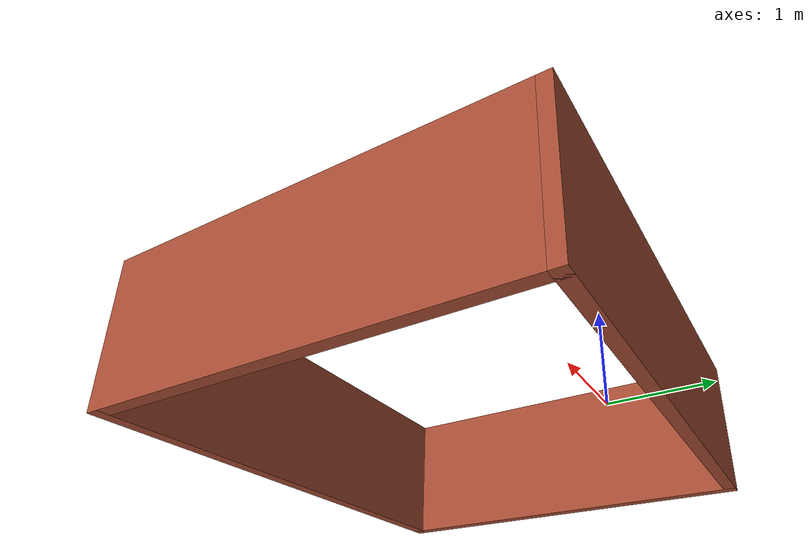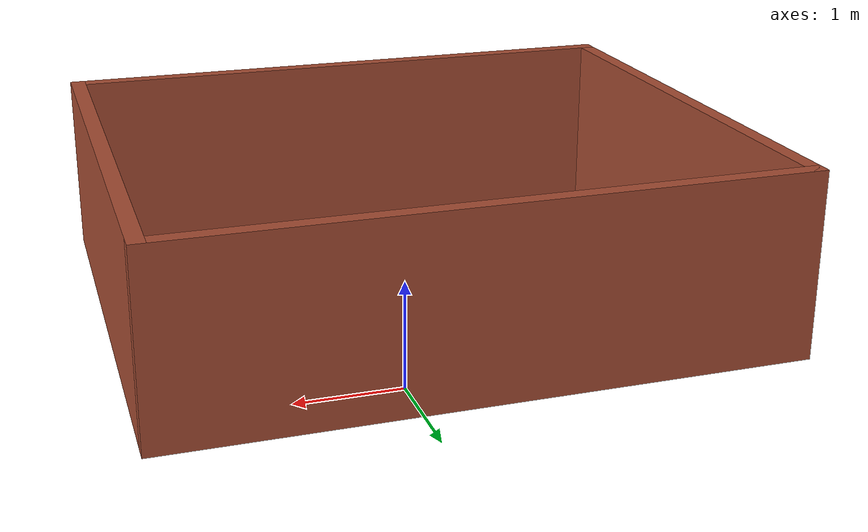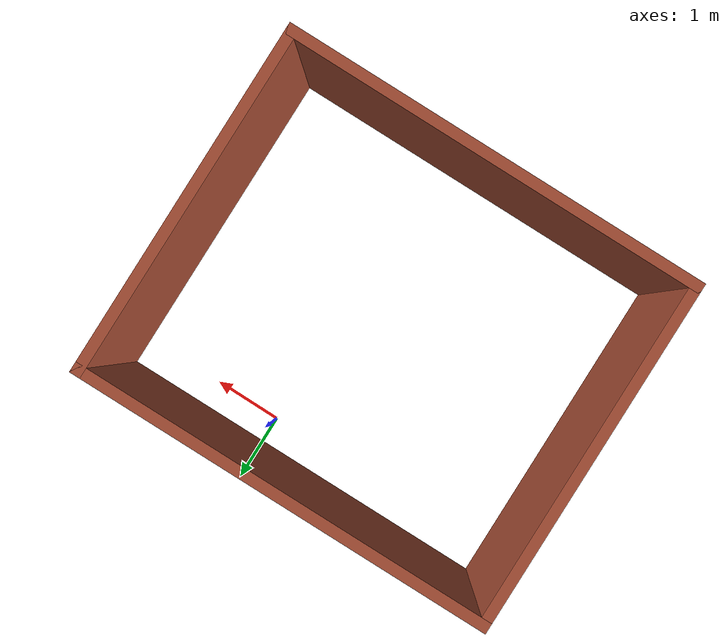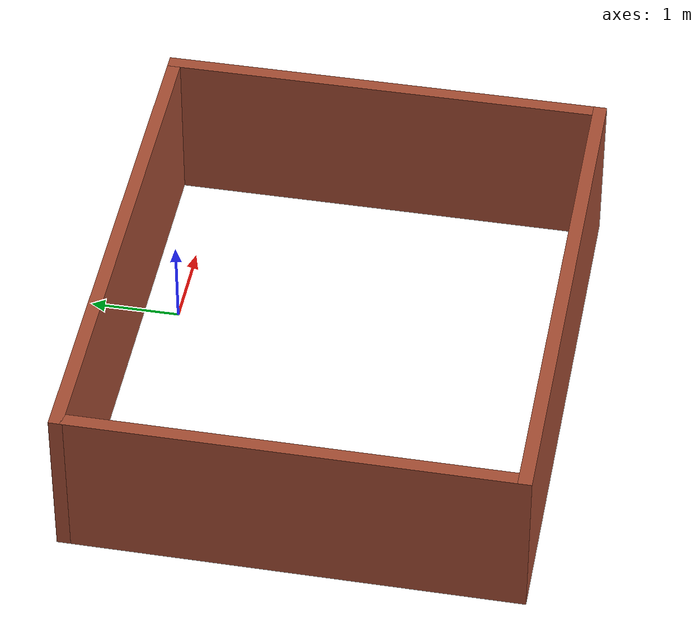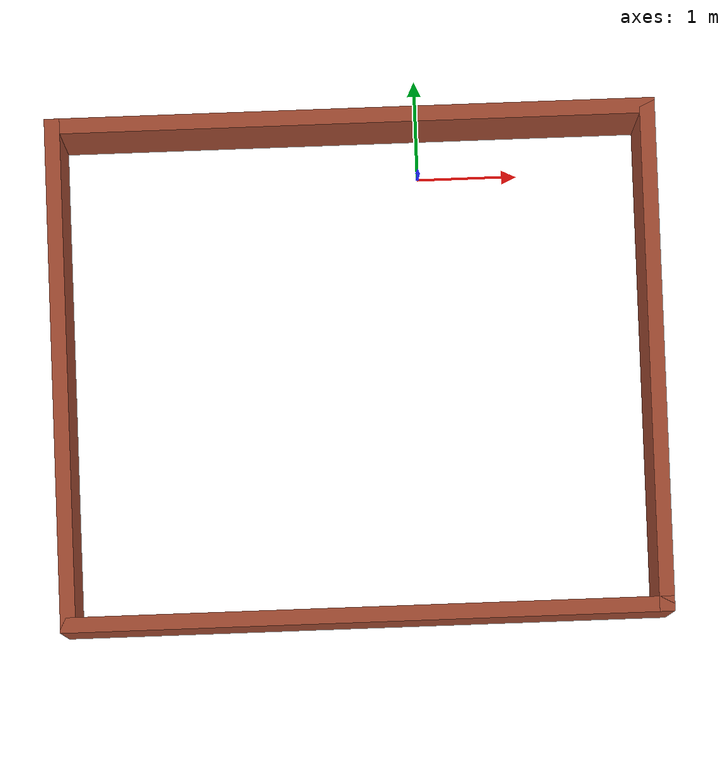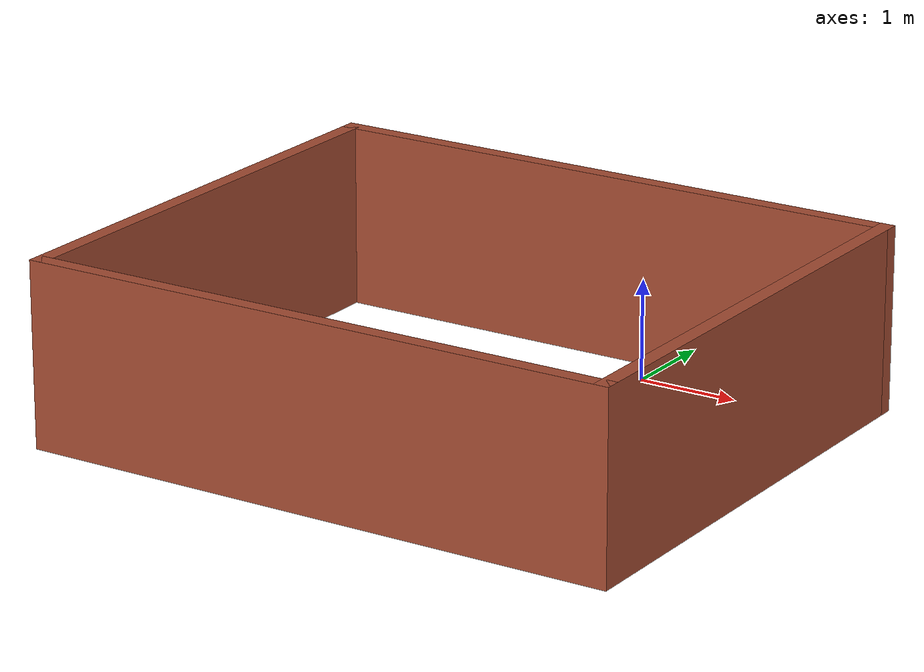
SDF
<?xml version='1.0'?>
<sdf version='1.7'>
  <model name='closed_room'>
    <pose>-0.668 -1.9845 0 0 -0 0</pose>
    <link name='Wall_35'>
      <collision name='Wall_35_Collision'>
        <geometry>
          <box>
            <size>6 0.15 1.8</size>
          </box>
        </geometry>
        <pose>0 0 0.9 0 -0 0</pose>
      </collision>
      <visual name='Wall_35_Visual'>
        <pose>0 0 0.9 0 -0 0</pose>
        <geometry>
          <box>
            <size>6 0.15 1.8</size>
          </box>
        </geometry>
        <material>
          <script>
            <uri>file://media/materials/scripts/gazebo.material</uri>
            <name>Gazebo/Bricks</name>
          </script>
          <ambient>1 1 1 1</ambient>
        </material>
        <meta>
          <layer>0</layer>
        </meta>
      </visual>
      <pose>0 -2.4495 0 0 -0 0</pose>
    </link>
    <link name='Wall_36'>
      <collision name='Wall_36_Collision'>
        <geometry>
          <box>
            <size>5.04895 0.15 1.8</size>
          </box>
        </geometry>
        <pose>0 0 0.9 0 -0 0</pose>
      </collision>
      <visual name='Wall_36_Visual'>
        <pose>0 0 0.9 0 -0 0</pose>
        <geometry>
          <box>
            <size>5.04895 0.15 1.8</size>
          </box>
        </geometry>
        <material>
          <script>
            <uri>file://media/materials/scripts/gazebo.material</uri>
            <name>Gazebo/Bricks</name>
          </script>
          <ambient>1 1 1 1</ambient>
        </material>
        <meta>
          <layer>0</layer>
        </meta>
      </visual>
      <pose>2.925 -0 0 0 -0 1.5708</pose>
    </link>
    <link name='Wall_37'>
      <collision name='Wall_37_Collision'>
        <geometry>
          <box>
            <size>6 0.15 1.8</size>
          </box>
        </geometry>
        <pose>0 0 0.9 0 -0 0</pose>
      </collision>
      <visual name='Wall_37_Visual'>
        <pose>0 0 0.9 0 -0 0</pose>
        <geometry>
          <box>
            <size>6 0.15 1.8</size>
          </box>
        </geometry>
        <material>
          <script>
            <uri>file://media/materials/scripts/gazebo.material</uri>
            <name>Gazebo/Bricks</name>
          </script>
          <ambient>1 1 1 1</ambient>
        </material>
        <meta>
          <layer>0</layer>
        </meta>
      </visual>
      <pose>0 2.4495 0 0 -0 3.14159</pose>
    </link>
    <link name='Wall_42'>
      <collision name='Wall_42_Collision'>
        <geometry>
          <box>
            <size>5.04853 0.15 1.8</size>
          </box>
        </geometry>
        <pose>0 0 0.9 0 -0 0</pose>
      </collision>
      <visual name='Wall_42_Visual'>
        <pose>0 0 0.9 0 -0 0</pose>
        <geometry>
          <box>
            <size>5.04853 0.15 1.8</size>
          </box>
        </geometry>
        <material>
          <script>
            <uri>file://media/materials/scripts/gazebo.material</uri>
            <name>Gazebo/Bricks</name>
          </script>
          <ambient>1 1 1 1</ambient>
        </material>
        <meta>
          <layer>0</layer>
        </meta>
      </visual>
      <pose>-2.925 -0 0 0 -0 -1.5708</pose>
    </link>
    <static>1</static>
  </model>
</sdf>
